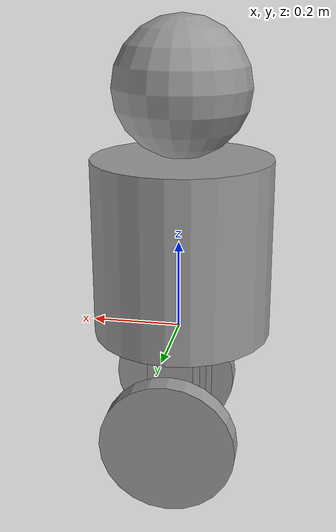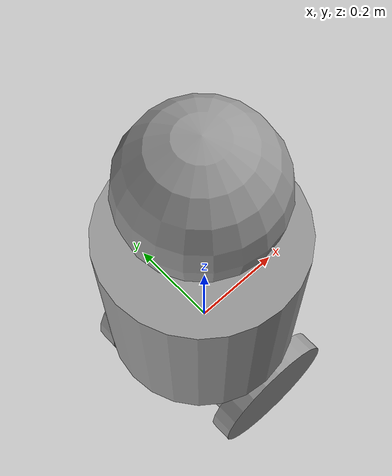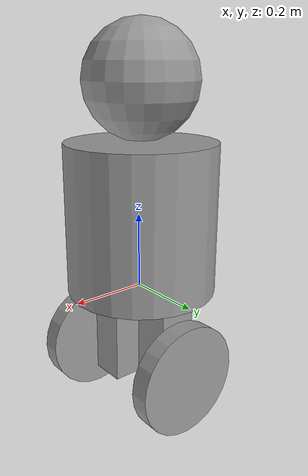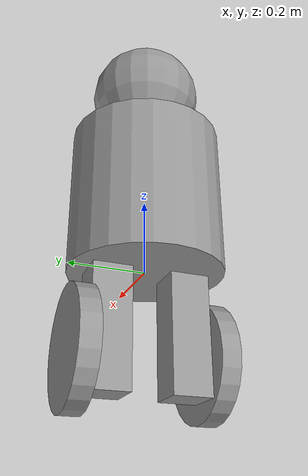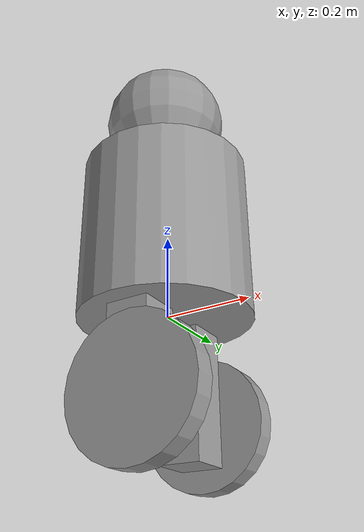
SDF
<?xml version='1.0'?>
<sdf version='1.6'>
  <model name='Robot'>
    <link name='link_4'>
      <pose frame=''>-0.0075 -0.1 -0.158333 0 -0 0</pose>
      <inertial>
        <mass>1</mass>
        <inertia>
          <ixx>0.166667</ixx>
          <ixy>0</ixy>
          <ixz>0</ixz>
          <iyy>0.166667</iyy>
          <iyz>0</iyz>
          <izz>0.166667</izz>
        </inertia>
        <pose frame=''>0 0 0 0 -0 0</pose>
      </inertial>
      <gravity>1</gravity>
      <self_collide>0</self_collide>
      <kinematic>0</kinematic>
      <visual name='visual'>
        <pose frame=''>0 0 0 0 -0 0</pose>
        <geometry>
          <box>
            <size>0.1 0.1 0.3</size>
          </box>
        </geometry>
        <material>
          <lighting>1</lighting>
          <script>
            <uri>file://media/materials/scripts/gazebo.material</uri>
            <name>Gazebo/Grey</name>
          </script>
          <shader type='pixel'>
            <normal_map>__default__</normal_map>
          </shader>
          <ambient>0.3 0.3 0.3 1</ambient>
          <diffuse>0.7 0.7 0.7 1</diffuse>
          <specular>0.01 0.01 0.01 1</specular>
          <emissive>0 0 0 1</emissive>
        </material>
        <transparency>0</transparency>
        <cast_shadows>1</cast_shadows>
      </visual>
      <collision name='collision'>
        <laser_retro>0</laser_retro>
        <max_contacts>10</max_contacts>
        <pose frame=''>0 0 0 0 -0 0</pose>
        <geometry>
          <box>
            <size>0.1 0.1 0.3</size>
          </box>
        </geometry>
        <surface>
          <friction>
            <ode>
              <mu>1</mu>
              <mu2>1</mu2>
              <fdir1>0 0 0</fdir1>
              <slip1>0</slip1>
              <slip2>0</slip2>
            </ode>
            <torsional>
              <coefficient>1</coefficient>
              <patch_radius>0</patch_radius>
              <surface_radius>0</surface_radius>
              <use_patch_radius>1</use_patch_radius>
              <ode>
                <slip>0</slip>
              </ode>
            </torsional>
          </friction>
          <bounce>
            <restitution_coefficient>0</restitution_coefficient>
            <threshold>1e+06</threshold>
          </bounce>
          <contact>
            <collide_without_contact>0</collide_without_contact>
            <collide_without_contact_bitmask>1</collide_without_contact_bitmask>
            <collide_bitmask>1</collide_bitmask>
            <ode>
              <soft_cfm>0</soft_cfm>
              <soft_erp>0.2</soft_erp>
              <kp>1e+13</kp>
              <kd>1</kd>
              <max_vel>0.01</max_vel>
              <min_depth>0</min_depth>
            </ode>
            <bullet>
              <split_impulse>1</split_impulse>
              <split_impulse_penetration_threshold>-0.01</split_impulse_penetration_threshold>
              <soft_cfm>0</soft_cfm>
              <soft_erp>0.2</soft_erp>
              <kp>1e+13</kp>
              <kd>1</kd>
            </bullet>
          </contact>
        </surface>
      </collision>
    </link>
    <link name='link_11'>
      <pose frame=''>-0.0075 0 0.541667 0 -0 0</pose>
      <inertial>
        <mass>1</mass>
        <inertia>
          <ixx>0.1</ixx>
          <ixy>0</ixy>
          <ixz>0</ixz>
          <iyy>0.1</iyy>
          <iyz>0</iyz>
          <izz>0.1</izz>
        </inertia>
        <pose frame=''>0 0 0 0 -0 0</pose>
      </inertial>
      <gravity>1</gravity>
      <self_collide>0</self_collide>
      <kinematic>0</kinematic>
      <visual name='visual'>
        <pose frame=''>0 0 0 0 -0 0</pose>
        <geometry>
          <sphere>
            <radius>0.15</radius>
          </sphere>
        </geometry>
        <material>
          <lighting>1</lighting>
          <script>
            <uri>file://media/materials/scripts/gazebo.material</uri>
            <name>Gazebo/Grey</name>
          </script>
          <shader type='pixel'>
            <normal_map>__default__</normal_map>
          </shader>
          <ambient>0.3 0.3 0.3 1</ambient>
          <diffuse>0.7 0.7 0.7 1</diffuse>
          <specular>0.01 0.01 0.01 1</specular>
          <emissive>0 0 0 1</emissive>
        </material>
        <transparency>0</transparency>
        <cast_shadows>1</cast_shadows>
      </visual>
      <collision name='collision'>
        <laser_retro>0</laser_retro>
        <max_contacts>10</max_contacts>
        <pose frame=''>0 0 0 0 -0 0</pose>
        <geometry>
          <sphere>
            <radius>0.15</radius>
          </sphere>
        </geometry>
        <surface>
          <friction>
            <ode>
              <mu>1</mu>
              <mu2>1</mu2>
              <fdir1>0 0 0</fdir1>
              <slip1>0</slip1>
              <slip2>0</slip2>
            </ode>
            <torsional>
              <coefficient>1</coefficient>
              <patch_radius>0</patch_radius>
              <surface_radius>0</surface_radius>
              <use_patch_radius>1</use_patch_radius>
              <ode>
                <slip>0</slip>
              </ode>
            </torsional>
          </friction>
          <bounce>
            <restitution_coefficient>0</restitution_coefficient>
            <threshold>1e+06</threshold>
          </bounce>
          <contact>
            <collide_without_contact>0</collide_without_contact>
            <collide_without_contact_bitmask>1</collide_without_contact_bitmask>
            <collide_bitmask>1</collide_bitmask>
            <ode>
              <soft_cfm>0</soft_cfm>
              <soft_erp>0.2</soft_erp>
              <kp>1e+13</kp>
              <kd>1</kd>
              <max_vel>0.01</max_vel>
              <min_depth>0</min_depth>
            </ode>
            <bullet>
              <split_impulse>1</split_impulse>
              <split_impulse_penetration_threshold>-0.01</split_impulse_penetration_threshold>
              <soft_cfm>0</soft_cfm>
              <soft_erp>0.2</soft_erp>
              <kp>1e+13</kp>
              <kd>1</kd>
            </bullet>
          </contact>
        </surface>
      </collision>
    </link>
    <link name='link_13'>
      <pose frame=''>-0.0075 0 0.191667 0 -0 0</pose>
      <inertial>
        <mass>1</mass>
        <inertia>
          <ixx>0.145833</ixx>
          <ixy>0</ixy>
          <ixz>0</ixz>
          <iyy>0.145833</iyy>
          <iyz>0</iyz>
          <izz>0.125</izz>
        </inertia>
        <pose frame=''>0 0 0 0 -0 0</pose>
      </inertial>
      <gravity>1</gravity>
      <self_collide>0</self_collide>
      <kinematic>0</kinematic>
      <visual name='visual'>
        <pose frame=''>0 0 0 0 -0 0</pose>
        <geometry>
          <cylinder>
            <radius>0.2</radius>
            <length>0.4</length>
          </cylinder>
        </geometry>
        <material>
          <lighting>1</lighting>
          <script>
            <uri>file://media/materials/scripts/gazebo.material</uri>
            <name>Gazebo/Grey</name>
          </script>
          <shader type='pixel'>
            <normal_map>__default__</normal_map>
          </shader>
          <ambient>0.3 0.3 0.3 1</ambient>
          <diffuse>0.7 0.7 0.7 1</diffuse>
          <specular>0.01 0.01 0.01 1</specular>
          <emissive>0 0 0 1</emissive>
        </material>
        <transparency>0</transparency>
        <cast_shadows>1</cast_shadows>
      </visual>
      <collision name='collision'>
        <laser_retro>0</laser_retro>
        <max_contacts>10</max_contacts>
        <pose frame=''>0 0 0 0 -0 0</pose>
        <geometry>
          <cylinder>
            <radius>0.2</radius>
            <length>0.4</length>
          </cylinder>
        </geometry>
        <surface>
          <friction>
            <ode>
              <mu>1</mu>
              <mu2>1</mu2>
              <fdir1>0 0 0</fdir1>
              <slip1>0</slip1>
              <slip2>0</slip2>
            </ode>
            <torsional>
              <coefficient>1</coefficient>
              <patch_radius>0</patch_radius>
              <surface_radius>0</surface_radius>
              <use_patch_radius>1</use_patch_radius>
              <ode>
                <slip>0</slip>
              </ode>
            </torsional>
          </friction>
          <bounce>
            <restitution_coefficient>0</restitution_coefficient>
            <threshold>1e+06</threshold>
          </bounce>
          <contact>
            <collide_without_contact>0</collide_without_contact>
            <collide_without_contact_bitmask>1</collide_without_contact_bitmask>
            <collide_bitmask>1</collide_bitmask>
            <ode>
              <soft_cfm>0</soft_cfm>
              <soft_erp>0.2</soft_erp>
              <kp>1e+13</kp>
              <kd>1</kd>
              <max_vel>0.01</max_vel>
              <min_depth>0</min_depth>
            </ode>
            <bullet>
              <split_impulse>1</split_impulse>
              <split_impulse_penetration_threshold>-0.01</split_impulse_penetration_threshold>
              <soft_cfm>0</soft_cfm>
              <soft_erp>0.2</soft_erp>
              <kp>1e+13</kp>
              <kd>1</kd>
            </bullet>
          </contact>
        </surface>
      </collision>
    </link>
    <link name='link_14'>
      <pose frame=''>0.0375 -0.175014 -0.208333 1.5707 -0 0</pose>
      <inertial>
        <mass>1</mass>
        <inertia>
          <ixx>0.145833</ixx>
          <ixy>0</ixy>
          <ixz>0</ixz>
          <iyy>0.145833</iyy>
          <iyz>0</iyz>
          <izz>0.125</izz>
        </inertia>
        <pose frame=''>0 0 0 0 -0 0</pose>
      </inertial>
      <gravity>1</gravity>
      <self_collide>0</self_collide>
      <kinematic>0</kinematic>
      <visual name='visual'>
        <pose frame=''>0 0 0 0 -0 0</pose>
        <geometry>
          <cylinder>
            <radius>0.15</radius>
            <length>0.05</length>
          </cylinder>
        </geometry>
        <material>
          <lighting>1</lighting>
          <script>
            <uri>file://media/materials/scripts/gazebo.material</uri>
            <name>Gazebo/Grey</name>
          </script>
          <shader type='pixel'>
            <normal_map>__default__</normal_map>
          </shader>
          <ambient>0.3 0.3 0.3 1</ambient>
          <diffuse>0.7 0.7 0.7 1</diffuse>
          <specular>0.01 0.01 0.01 1</specular>
          <emissive>0 0 0 1</emissive>
        </material>
        <transparency>0</transparency>
        <cast_shadows>1</cast_shadows>
      </visual>
      <collision name='collision'>
        <laser_retro>0</laser_retro>
        <max_contacts>10</max_contacts>
        <pose frame=''>0 0 0 0 -0 0</pose>
        <geometry>
          <cylinder>
            <radius>0.15</radius>
            <length>0.05</length>
          </cylinder>
        </geometry>
        <surface>
          <friction>
            <ode>
              <mu>1</mu>
              <mu2>1</mu2>
              <fdir1>0 0 0</fdir1>
              <slip1>0</slip1>
              <slip2>0</slip2>
            </ode>
            <torsional>
              <coefficient>1</coefficient>
              <patch_radius>0</patch_radius>
              <surface_radius>0</surface_radius>
              <use_patch_radius>1</use_patch_radius>
              <ode>
                <slip>0</slip>
              </ode>
            </torsional>
          </friction>
          <bounce>
            <restitution_coefficient>0</restitution_coefficient>
            <threshold>1e+06</threshold>
          </bounce>
          <contact>
            <collide_without_contact>0</collide_without_contact>
            <collide_without_contact_bitmask>1</collide_without_contact_bitmask>
            <collide_bitmask>1</collide_bitmask>
            <ode>
              <soft_cfm>0</soft_cfm>
              <soft_erp>0.2</soft_erp>
              <kp>1e+13</kp>
              <kd>1</kd>
              <max_vel>0.01</max_vel>
              <min_depth>0</min_depth>
            </ode>
            <bullet>
              <split_impulse>1</split_impulse>
              <split_impulse_penetration_threshold>-0.01</split_impulse_penetration_threshold>
              <soft_cfm>0</soft_cfm>
              <soft_erp>0.2</soft_erp>
              <kp>1e+13</kp>
              <kd>1</kd>
            </bullet>
          </contact>
        </surface>
      </collision>
    </link>
    <link name='link_14_clone'>
      <pose frame=''>-0.0075 0.175014 -0.208333 1.5707 -0 0</pose>
      <inertial>
        <mass>1</mass>
        <inertia>
          <ixx>0.145833</ixx>
          <ixy>0</ixy>
          <ixz>0</ixz>
          <iyy>0.145833</iyy>
          <iyz>0</iyz>
          <izz>0.125</izz>
        </inertia>
        <pose frame=''>0 0 0 0 -0 0</pose>
      </inertial>
      <self_collide>0</self_collide>
      <kinematic>0</kinematic>
      <gravity>1</gravity>
      <visual name='visual'>
        <pose frame=''>0 0 0 0 -0 0</pose>
        <geometry>
          <cylinder>
            <radius>0.15</radius>
            <length>0.05</length>
          </cylinder>
        </geometry>
        <material>
          <lighting>1</lighting>
          <script>
            <uri>file://media/materials/scripts/gazebo.material</uri>
            <name>Gazebo/Grey</name>
          </script>
          <shader type='pixel'>
            <normal_map>__default__</normal_map>
          </shader>
          <ambient>0.3 0.3 0.3 1</ambient>
          <diffuse>0.7 0.7 0.7 1</diffuse>
          <specular>0.01 0.01 0.01 1</specular>
          <emissive>0 0 0 1</emissive>
        </material>
        <transparency>0</transparency>
        <cast_shadows>1</cast_shadows>
      </visual>
      <collision name='collision'>
        <laser_retro>0</laser_retro>
        <max_contacts>10</max_contacts>
        <pose frame=''>0 0 0 0 -0 0</pose>
        <geometry>
          <cylinder>
            <radius>0.15</radius>
            <length>0.05</length>
          </cylinder>
        </geometry>
        <surface>
          <friction>
            <ode>
              <mu>1</mu>
              <mu2>1</mu2>
              <fdir1>0 0 0</fdir1>
              <slip1>0</slip1>
              <slip2>0</slip2>
            </ode>
            <torsional>
              <coefficient>1</coefficient>
              <patch_radius>0</patch_radius>
              <surface_radius>0</surface_radius>
              <use_patch_radius>1</use_patch_radius>
              <ode>
                <slip>0</slip>
              </ode>
            </torsional>
          </friction>
          <bounce>
            <restitution_coefficient>0</restitution_coefficient>
            <threshold>1e+06</threshold>
          </bounce>
          <contact>
            <collide_without_contact>0</collide_without_contact>
            <collide_without_contact_bitmask>1</collide_without_contact_bitmask>
            <collide_bitmask>1</collide_bitmask>
            <ode>
              <soft_cfm>0</soft_cfm>
              <soft_erp>0.2</soft_erp>
              <kp>1e+13</kp>
              <kd>1</kd>
              <max_vel>0.01</max_vel>
              <min_depth>0</min_depth>
            </ode>
            <bullet>
              <split_impulse>1</split_impulse>
              <split_impulse_penetration_threshold>-0.01</split_impulse_penetration_threshold>
              <soft_cfm>0</soft_cfm>
              <soft_erp>0.2</soft_erp>
              <kp>1e+13</kp>
              <kd>1</kd>
            </bullet>
          </contact>
        </surface>
      </collision>
    </link>
    <link name='link_4_clone'>
      <pose frame=''>-0.0075 0.1 -0.158333 0 -0 0</pose>
      <inertial>
        <mass>1</mass>
        <inertia>
          <ixx>0.166667</ixx>
          <ixy>0</ixy>
          <ixz>0</ixz>
          <iyy>0.166667</iyy>
          <iyz>0</iyz>
          <izz>0.166667</izz>
        </inertia>
        <pose frame=''>0 0 0 0 -0 0</pose>
      </inertial>
      <self_collide>0</self_collide>
      <kinematic>0</kinematic>
      <gravity>1</gravity>
      <visual name='visual'>
        <pose frame=''>0 0 0 0 -0 0</pose>
        <geometry>
          <box>
            <size>0.1 0.1 0.3</size>
          </box>
        </geometry>
        <material>
          <lighting>1</lighting>
          <script>
            <uri>file://media/materials/scripts/gazebo.material</uri>
            <name>Gazebo/Grey</name>
          </script>
          <shader type='pixel'>
            <normal_map>__default__</normal_map>
          </shader>
          <ambient>0.3 0.3 0.3 1</ambient>
          <diffuse>0.7 0.7 0.7 1</diffuse>
          <specular>0.01 0.01 0.01 1</specular>
          <emissive>0 0 0 1</emissive>
        </material>
        <transparency>0</transparency>
        <cast_shadows>1</cast_shadows>
      </visual>
      <collision name='collision'>
        <laser_retro>0</laser_retro>
        <max_contacts>10</max_contacts>
        <pose frame=''>0 0 0 0 -0 0</pose>
        <geometry>
          <box>
            <size>0.1 0.1 0.3</size>
          </box>
        </geometry>
        <surface>
          <friction>
            <ode>
              <mu>1</mu>
              <mu2>1</mu2>
              <fdir1>0 0 0</fdir1>
              <slip1>0</slip1>
              <slip2>0</slip2>
            </ode>
            <torsional>
              <coefficient>1</coefficient>
              <patch_radius>0</patch_radius>
              <surface_radius>0</surface_radius>
              <use_patch_radius>1</use_patch_radius>
              <ode>
                <slip>0</slip>
              </ode>
            </torsional>
          </friction>
          <bounce>
            <restitution_coefficient>0</restitution_coefficient>
            <threshold>1e+06</threshold>
          </bounce>
          <contact>
            <collide_without_contact>0</collide_without_contact>
            <collide_without_contact_bitmask>1</collide_without_contact_bitmask>
            <collide_bitmask>1</collide_bitmask>
            <ode>
              <soft_cfm>0</soft_cfm>
              <soft_erp>0.2</soft_erp>
              <kp>1e+13</kp>
              <kd>1</kd>
              <max_vel>0.01</max_vel>
              <min_depth>0</min_depth>
            </ode>
            <bullet>
              <split_impulse>1</split_impulse>
              <split_impulse_penetration_threshold>-0.01</split_impulse_penetration_threshold>
              <soft_cfm>0</soft_cfm>
              <soft_erp>0.2</soft_erp>
              <kp>1e+13</kp>
              <kd>1</kd>
            </bullet>
          </contact>
        </surface>
      </collision>
    </link>
    <joint name='link_13_JOINT_5' type='fixed'>
      <parent>link_13</parent>
      <child>link_11</child>
      <pose frame=''>0 0 0 0 -0 0</pose>
      <physics>
        <ode>
          <limit>
            <cfm>0</cfm>
            <erp>0.2</erp>
          </limit>
          <suspension>
            <cfm>0</cfm>
            <erp>0.2</erp>
          </suspension>
        </ode>
      </physics>
    </joint>
    <joint name='link_4_JOINT_3' type='fixed'>
      <parent>link_4</parent>
      <child>link_13</child>
      <pose frame=''>0 0 0 0 -0 0</pose>
      <physics>
        <ode>
          <limit>
            <cfm>0</cfm>
            <erp>0.2</erp>
          </limit>
          <suspension>
            <cfm>0</cfm>
            <erp>0.2</erp>
          </suspension>
        </ode>
      </physics>
    </joint>
    <joint name='link_4_JOINT_8' type='revolute'>
      <parent>link_4</parent>
      <child>link_14</child>
      <pose frame=''>0 0 0 0 -0 0</pose>
      <axis>
        <xyz>0 0 1</xyz>
        <use_parent_model_frame>0</use_parent_model_frame>
        <limit>
          <lower>-1.79769e+308</lower>
          <upper>1.79769e+308</upper>
          <effort>-1</effort>
          <velocity>-1</velocity>
        </limit>
        <dynamics>
          <spring_reference>0</spring_reference>
          <spring_stiffness>0</spring_stiffness>
          <damping>0</damping>
        </dynamics>
      </axis>
      <physics>
        <ode>
          <limit>
            <cfm>0</cfm>
            <erp>0.2</erp>
          </limit>
          <suspension>
            <cfm>0</cfm>
            <erp>0.2</erp>
          </suspension>
        </ode>
      </physics>
    </joint>
    <joint name='link_4_clone_JOINT_4' type='fixed'>
      <parent>link_4_clone</parent>
      <child>link_13</child>
      <pose frame=''>0 0 0 0 -0 0</pose>
      <physics>
        <ode>
          <limit>
            <cfm>0</cfm>
            <erp>0.2</erp>
          </limit>
          <suspension>
            <cfm>0</cfm>
            <erp>0.2</erp>
          </suspension>
        </ode>
      </physics>
    </joint>
    <joint name='link_4_clone_JOINT_9' type='revolute'>
      <parent>link_4_clone</parent>
      <child>link_14_clone</child>
      <pose frame=''>0 0 0 0 -0 0</pose>
      <axis>
        <xyz>0 0 1</xyz>
        <use_parent_model_frame>0</use_parent_model_frame>
        <limit>
          <lower>-1.79769e+308</lower>
          <upper>1.79769e+308</upper>
          <effort>-1</effort>
          <velocity>-1</velocity>
        </limit>
        <dynamics>
          <spring_reference>0</spring_reference>
          <spring_stiffness>0</spring_stiffness>
          <damping>0</damping>
        </dynamics>
      </axis>
      <physics>
        <ode>
          <limit>
            <cfm>0</cfm>
            <erp>0.2</erp>
          </limit>
          <suspension>
            <cfm>0</cfm>
            <erp>0.2</erp>
          </suspension>
        </ode>
      </physics>
    </joint>
    <static>0</static>
    <allow_auto_disable>1</allow_auto_disable>
  </model>
</sdf>
